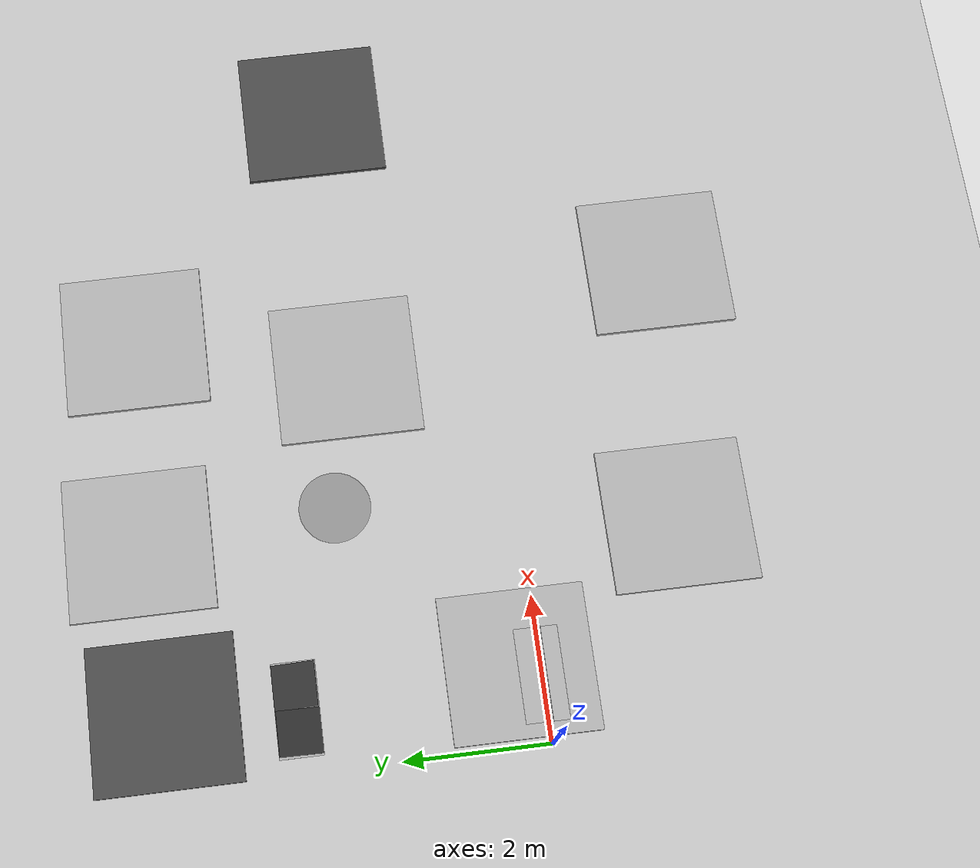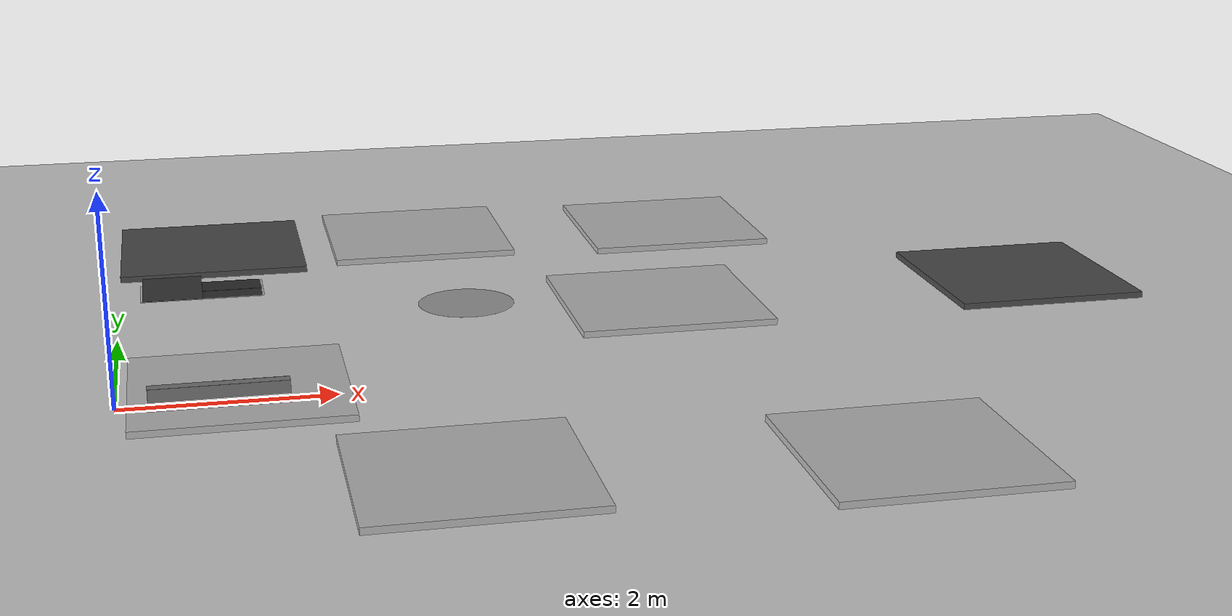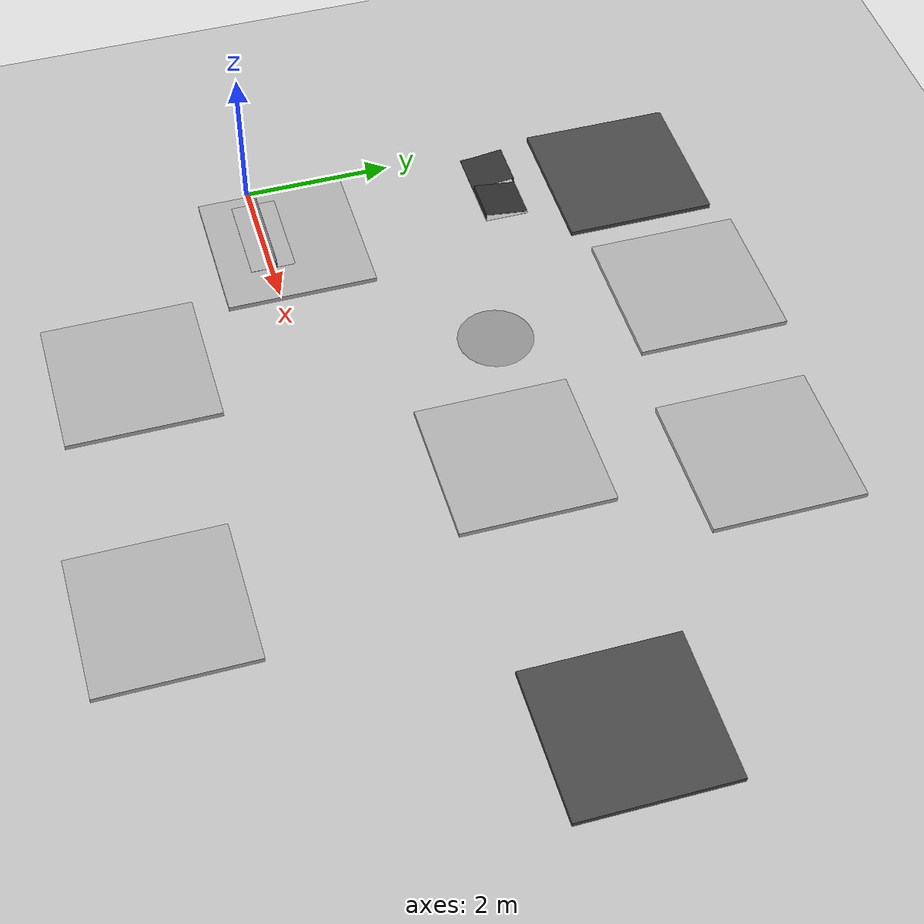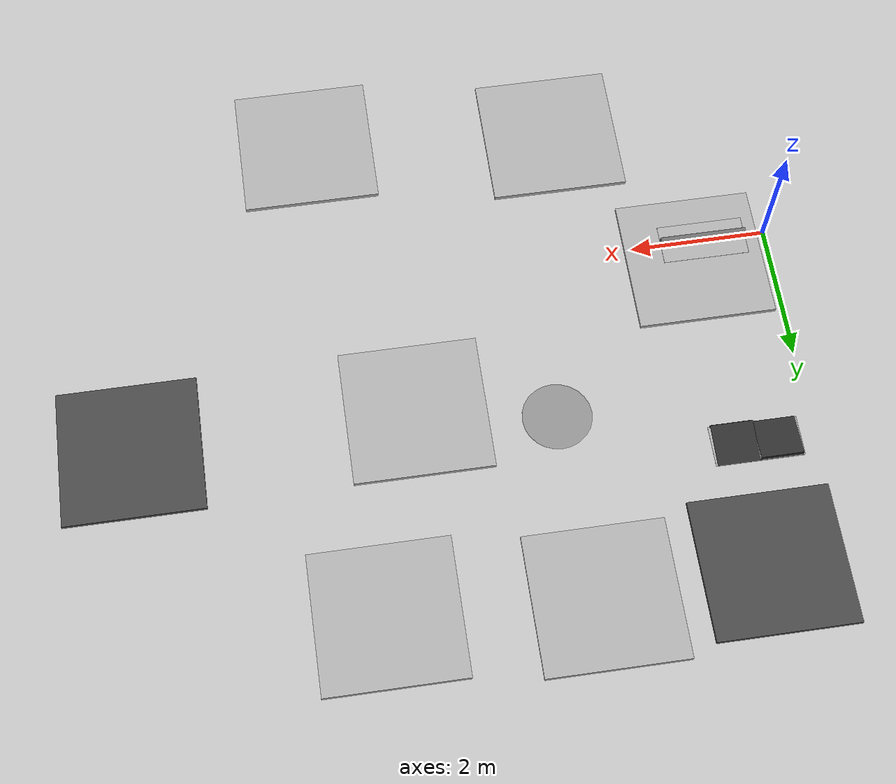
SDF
<sdf version="1.6">
 <world name="default">
  <model name="texture1">
   <static>1</static>
   <link name="link">
    <collision name="collision"><geometry><box><size>2 2 0.1</size></box></geometry></collision>
    <visual name="visual">
     <cast_shadows>0</cast_shadows>
     <geometry><box><size>2 2 0.1</size></box></geometry>
     <material>
      <script>
       <uri>model://texture1/materials/scripts</uri>
       <uri>model://texture1/materials/textures</uri>
       <name>vrc/texture1</name>
      </script>
     </material>
    </visual>
   </link>
   <pose>1.10495 0.295237 0 0 -0 0</pose>
  </model>
  <model name="texture2">
   <static>1</static>
   <link name="link">
    <collision name="collision"><geometry><box><size>2 2 0.1</size></box></geometry></collision>
    <visual name="visual">
     <cast_shadows>0</cast_shadows>
     <geometry><box><size>2 2 0.1</size></box></geometry>
     <material>
      <script>
       <uri>model://texture2/materials/scripts</uri>
       <uri>model://texture2/materials/textures</uri>
       <name>vrc/texture2</name>
      </script>
     </material>
    </visual>
   </link>
   <pose>2.86208 -2.15151 0 0 -0 0</pose>
  </model>
  <model name="texture4">
   <static>1</static>
   <link name="link">
    <collision name="collision"><geometry><box><size>2 2 0.1</size></box></geometry></collision>
    <visual name="visual">
     <cast_shadows>0</cast_shadows>
     <geometry><box><size>2 2 0.1</size></box></geometry>
     <material>
      <script>
       <uri>model://texture4/materials/scripts</uri>
       <uri>model://texture4/materials/textures</uri>
       <name>vrc/texture4</name>
      </script>
     </material>
    </visual>
   </link>
   <pose>6.58941 -2.46684 0 0 -0 0</pose>
  </model>
  <model name="texture1_1">
   <static>1</static>
   <link name="link">
    <collision name="collision"><geometry><box><size>2 2 0.1</size></box></geometry></collision>
    <visual name="visual">
     <cast_shadows>0</cast_shadows>
     <geometry><box><size>2 2 0.1</size></box></geometry>
     <material>
      <script>
       <uri>model://texture1/materials/scripts</uri>
       <uri>model://texture1/materials/textures</uri>
       <name>vrc/texture1</name>
      </script>
     </material>
    </visual>
   </link>
   <pose>5.50732 2.14153 0 0 -0 0</pose>
  </model>
  <model name="texture2_1">
   <static>1</static>
   <link name="link">
    <collision name="collision"><geometry><box><size>2 2 0.1</size></box></geometry></collision>
    <visual name="visual">
     <cast_shadows>0</cast_shadows>
     <geometry><box><size>2 2 0.1</size></box></geometry>
     <material>
      <script>
       <uri>model://texture2/materials/scripts</uri>
       <uri>model://texture2/materials/textures</uri>
       <name>vrc/texture2</name>
      </script>
     </material>
    </visual>
   </link>
   <pose>6.2809 5.0697 0 0 -0 0</pose>
  </model>
  <model name="texture4_1">
   <static>1</static>
   <link name="link">
    <collision name="collision"><geometry><box><size>2 2 0.1</size></box></geometry></collision>
    <visual name="visual">
     <cast_shadows>0</cast_shadows>
     <geometry><box><size>2 2 0.1</size></box></geometry>
     <material>
      <script>
       <uri>model://texture4/materials/scripts</uri>
       <uri>model://texture4/materials/textures</uri>
       <name>vrc/texture4</name>
      </script>
     </material>
    </visual>
   </link>
   <pose>3.34657 5.22733 0 0 -0 0</pose>
  </model>
  <model name="asphalt_plane_2">
   <static>1</static>
   <link name="link">
    <collision name="collision"><geometry><box><size>2 2 0.1</size></box></geometry></collision>
    <visual name="visual">
     <cast_shadows>0</cast_shadows>
     <geometry><box><size>2 2 0.1</size></box></geometry>
     <material>
      <script>
       <uri>model://texture3/materials/scripts</uri>
       <uri>model://texture3/materials/textures</uri>
       <name>vrc/asphalt</name>
      </script>
     </material>
    </visual>
   </link>
   <pose>1.00288 5.06011 0 0 -0 0</pose>
  </model>
  <model name="unit_cylinder_0">
   <pose>3.5397 2.50816 0.000233 0 -0 0</pose>
   <link name="link">
    <inertial>
     <mass>1</mass>
     <inertia><ixx>0.145833</ixx><ixy>0</ixy><ixz>0</ixz><iyy>0.145833</iyy><iyz>0</iyz><izz>0.125</izz></inertia>
    </inertial>
    <collision name="collision">
     <geometry><cylinder><radius>0.5</radius><length>0.000465033</length></cylinder></geometry>
    </collision>
    <visual name="visual">
     <geometry><cylinder><radius>0.5</radius><length>0.000465033</length></cylinder></geometry>
     <material>
      <script><name>Gazebo/Grey</name><uri>file://media/materials/scripts/gazebo.material</uri></script>
     </material>
    </visual>
   </link>
  </model>
  <model name="unit_box_1">
   <pose>2.7034 -1.93957 -0.025 0 -0.050328 0</pose>
   <link name="link">
    <inertial>
     <mass>1</mass>
     <inertia>
      <ixx>0.166667</ixx>
      <ixy>0</ixy>
      <ixz>0</ixz>
      <iyy>0.166667</iyy>
      <iyz>0</iyz>
      <izz>0.166667</izz>
     </inertia>
    </inertial>
    <collision name="collision"><geometry><box><size>1 1 0.000305165</size></box></geometry></collision>
    <visual name="visual">
     <geometry><box><size>1 1 0.000305165</size></box></geometry>
     <material>
      <script><name>Gazebo/Grey</name><uri>file://media/materials/scripts/gazebo.material</uri></script>
     </material>
    </visual>
   </link>
  </model>
  <model name="ground_plane">
   <static>1</static>
   <link name="link">
    <collision name="collision">
     <geometry><plane><normal>0 0 1</normal><size>100 100</size></plane></geometry>
     <surface><friction><ode><mu>100</mu><mu2>50</mu2></ode></friction></surface>
    </collision>
    <visual name="visual">
     <cast_shadows>0</cast_shadows>
     <geometry><plane><normal>0 0 1</normal><size>100 100</size></plane></geometry>
     <material>
      <script><uri>file://media/materials/scripts/gazebo.material</uri><name>Gazebo/Grey</name></script>
     </material>
    </visual>
   </link>
   <pose>-0.49205 0.443924 0 0 -0 0</pose>
  </model>
  <model name="frc2016_ramparts">
   <static>1</static>
   <link name="link">
    <visual name="platform">
     <pose>0 0 0.06967 0 -0 0</pose>
     <geometry><box><size>1.27 0.5969 0.003175</size></box></geometry>
    </visual>
    <collision name="platform">
     <pose>0 0 0.06967 0 -0 0</pose>
     <geometry><box><size>1.27 0.5969 0.003175</size></box></geometry>
    </collision>
    <visual name="ramp1">
     <pose>0.30472 0.00588 0.1109 -0.13 0 0</pose>
     <geometry><box><size>0.60957 0.588891 0.00462</size></box></geometry>
     <material><ambient>0.2 0.2 0.2 1</ambient><diffuse>0.2 0.2 0.2 1</diffuse></material>
    </visual>
    <collision name="ramp1">
     <pose>0.30472 0.00588 0.1109 -0.13 0 0</pose>
     <geometry><box><size>0.60957 0.588891 0.00462</size></box></geometry>
    </collision>
    <visual name="up1">
     <pose>0.30472 -0.28806 0.11072 0 -0 0</pose>
     <geometry><box><size>0.60957 0.00462 0.07872</size></box></geometry>
     <material><ambient>0.2 0.2 0.2 1</ambient><diffuse>0.2 0.2 0.2 1</diffuse></material>
    </visual>
    <collision name="up1">
     <pose>0.30472 -0.28806 0.11072 0 -0 0</pose>
     <geometry><box><size>0.60957 0.00462 0.07872</size></box></geometry>
    </collision>
    <visual name="ramp2">
     <pose>-0.30472 -0.00619 0.1109 0.13 -0 0</pose>
     <geometry><box><size>0.60957 0.588891 0.00462</size></box></geometry>
     <material><ambient>0.2 0.2 0.2 1</ambient><diffuse>0.2 0.2 0.2 1</diffuse></material>
    </visual>
    <collision name="ramp2">
     <pose>-0.30472 -0.00619 0.1109 0.13 -0 0</pose>
     <geometry><box><size>0.60957 0.588891 0.00462</size></box></geometry>
    </collision>
    <visual name="up2">
     <pose>-0.30472 0.28806 0.11072 0 -0 0</pose>
     <geometry><box><size>0.60957 0.00462 0.07872</size></box></geometry>
     <material><ambient>0.2 0.2 0.2 1</ambient><diffuse>0.2 0.2 0.2 1</diffuse></material>
    </visual>
    <collision name="up2">
     <pose>-0.30472 0.28806 0.11072 0 -0 0</pose>
     <geometry><box><size>0.60957 0.00462 0.07872</size></box></geometry>
    </collision>
   </link>
   <pose>0.85255 3.30255 0 0 -0 0</pose>
  </model>
  <model name="frc2016_rockwall">
   <static>1</static>
   <link name="link">
    <inertial>
     <mass>10</mass>
     <pose>0 0 0.08974 0 -0 0</pose>
     <inertia><ixx>0.327091</ixx><ixy>0</ixy><ixz>0</ixz><iyy>1.37417</iyy><iyz>0</iyz><izz>1.64109</izz></inertia>
    </inertial>
    <visual name="platform">
     <pose>0 0 0.06432 0 -0 0</pose>
     <geometry><box><size>1.27 0.5969 0.003175</size></box></geometry>
    </visual>
    <collision name="platform">
     <pose>0 0 0.06432 0 -0 0</pose>
     <geometry><box><size>1.27 0.5969 0.003175</size></box></geometry>
    </collision>
    <visual name="up1">
     <pose>0 0.05166 0.12537 0 -0 0</pose>
     <geometry><box><size>1.27 0.00462 0.11892</size></box></geometry>
     <material><ambient>0.46 0.46 0.46 1</ambient><diffuse>0.46 0.46 0.46 1</diffuse></material>
    </visual>
    <collision name="up1">
     <pose>0 0.05166 0.12537 0 -0 0</pose>
     <geometry><box><size>1.27 0.00462 0.11892</size></box></geometry>
    </collision>
    <visual name="up2">
     <pose>0 -0.05801 0.12537 0 -0 0</pose>
     <geometry><box><size>1.27 0.00462 0.11892</size></box></geometry>
     <material><ambient>0.46 0.46 0.46 1</ambient><diffuse>0.46 0.46 0.46 1</diffuse></material>
    </visual>
    <collision name="up2">
     <pose>0 -0.05801 0.12537 0 -0 0</pose>
     <geometry><box><size>1.27 0.00462 0.11892</size></box></geometry>
    </collision>
    <visual name="top">
     <pose>0 -0.00249 0.18252 0 -0 0</pose>
     <geometry><box><size>1.27 0.1143 0.00462</size></box></geometry>
     <material><ambient>0.46 0.46 0.46 1</ambient><diffuse>0.46 0.46 0.46 1</diffuse></material>
    </visual>
    <collision name="top">
     <pose>0 -0.00249 0.18252 0 -0 0</pose>
     <geometry><box><size>1.27 0.1143 0.00462</size></box></geometry>
    </collision>
   </link>
   <pose>0.925132 0.018172 0 0 -0 0</pose>
  </model>
  <model name="asphalt_plane">
   <static>1</static>
   <link name="link">
    <collision name="collision"><geometry><box><size>2 2 0.1</size></box></geometry></collision>
    <visual name="visual">
     <cast_shadows>0</cast_shadows>
     <geometry><box><size>2 2 0.1</size></box></geometry>
     <material>
      <script>
       <uri>model://texture3/materials/scripts</uri>
       <uri>model://texture3/materials/textures</uri>
       <name>vrc/asphalt</name>
      </script>
     </material>
    </visual>
   </link>
   <pose>9.54454 2.20363 0 0 -0 0</pose>
  </model>
 </world>
</sdf>
